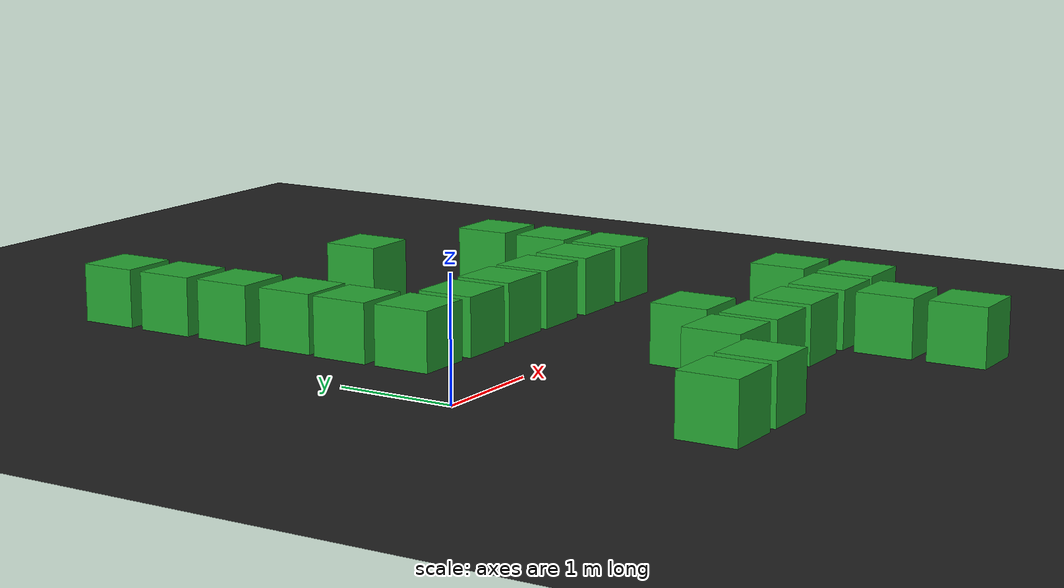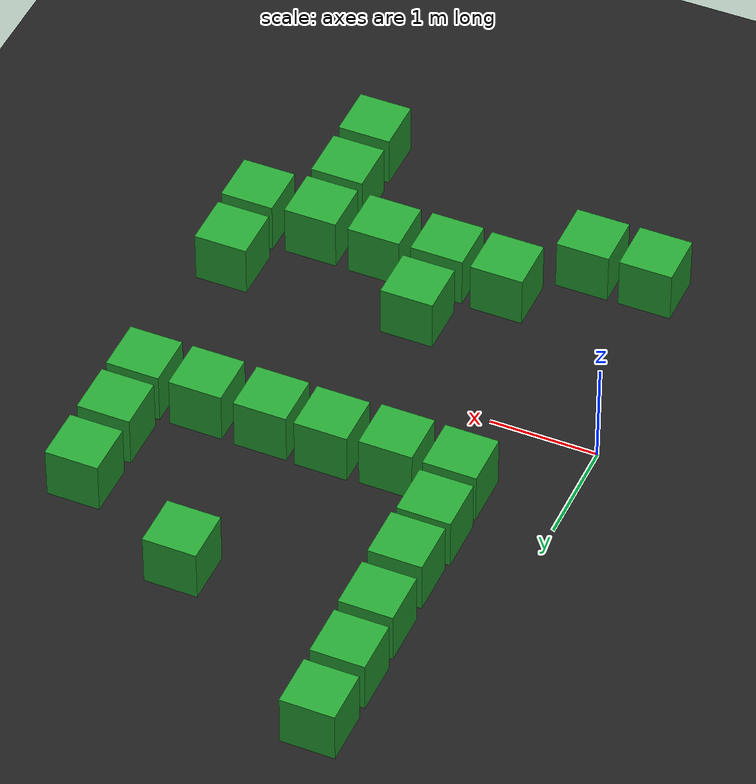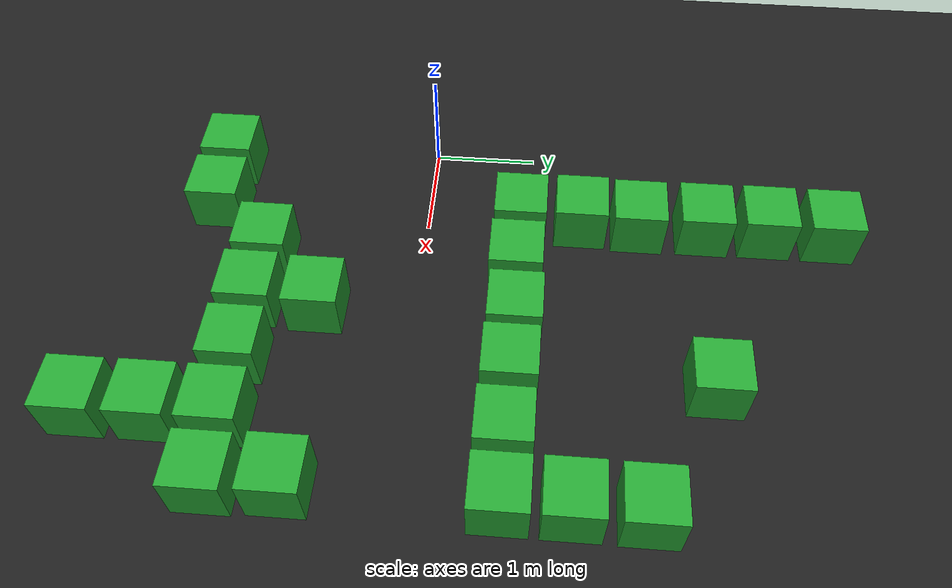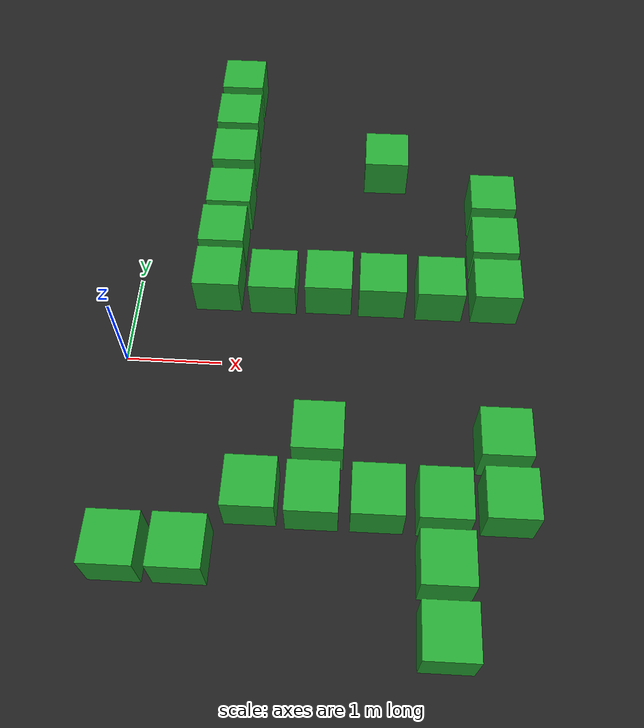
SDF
<sdf version="1.7">
 <world name="default">
  <model name="ground_plane">
   <static>1</static>
   <link name="link">
    <collision name="collision">
     <geometry><plane><normal>0 0 1</normal><size>100 100</size></plane></geometry>
     <surface>
      <friction>
       <ode>
        <mu>1.000000</mu>
        <mu2>1.000000</mu2>
        <fdir1>0.000000 0.000000 0.000000</fdir1>
        <slip1>0.000000</slip1>
        <slip2>0.000000</slip2>
       </ode>
      </friction>
      <bounce>
       <restitution_coefficient>0.000000</restitution_coefficient>
       <threshold>100000.000000</threshold>
      </bounce>
      <contact>
       <ode>
        <soft_cfm>0.000000</soft_cfm>
        <soft_erp>0.200000</soft_erp>
        <kp>1000000000.000000</kp>
        <kd>1.000000</kd>
        <max_vel>100.000000</max_vel>
        <min_depth>0.001000</min_depth>
       </ode>
      </contact>
     </surface>
    </collision>
    <visual name="visual">
     <cast_shadows>0</cast_shadows>
     <geometry><plane><normal>0 0 1</normal><size>100 100</size></plane></geometry>
     <material>
      <script><uri>file://media/materials/scripts/gazebo.material</uri><name>Gazebo/Black</name></script>
     </material>
    </visual>
   </link>
  </model>
  <model name="obstacle00">
   <link name="link_0">
    <inertial>
     <mass>0.1</mass>
     <inertia><ixx>10</ixx><ixy>0</ixy><ixz>0</ixz><iyy>10</iyy><iyz>0</iyz><izz>10</izz></inertia>
    </inertial>
    <visual name="visual">
     <geometry><box><size>0.5 0.5 0.5</size></box></geometry>
     <material>
      <lighting>1</lighting>
      <script><uri>file://media/materials/scripts/gazebo.material</uri><name>Gazebo/Green</name></script>
      <shader type="pixel"><normal_map>__default__</normal_map></shader>
      <ambient>0.3 0.3 0.3 1</ambient>
      <diffuse>0.7 0.7 0.7 1</diffuse>
      <specular>0.01 0.01 0.01 1</specular>
      <emissive>0 0 0 1</emissive>
     </material>
    </visual>
    <collision name="collision">
     <geometry><box><size>0.5 0.5 0.5</size></box></geometry>
     <surface>
      <friction>
       <ode>
        <mu>0.998500</mu>
        <mu2>0.998500</mu2>
        <fdir1>0.000000 0.000000 0.000000</fdir1>
        <slip1>0.000000</slip1>
        <slip2>0.000000</slip2>
       </ode>
      </friction>
      <bounce>
       <restitution_coefficient>0.000000</restitution_coefficient>
       <threshold>100000.000000</threshold>
      </bounce>
      <contact>
       <ode>
        <soft_cfm>0.000000</soft_cfm>
        <soft_erp>0.200000</soft_erp>
        <kp>100000.000000</kp>
        <kd>1.000000</kd>
        <max_vel>100.000000</max_vel>
        <min_depth>0.001000</min_depth>
       </ode>
      </contact>
     </surface>
     <laser_retro>0.000000</laser_retro>
    </collision>
   </link>
   <static>0</static>
   <pose>3.92032 2.10108 0.26 0 -0 0</pose>
  </model>
  <model name="obstacle01">
   <link name="link_0">
    <inertial>
     <mass>0.1</mass>
     <inertia><ixx>10</ixx><ixy>0</ixy><ixz>0</ixz><iyy>10</iyy><iyz>0</iyz><izz>10</izz></inertia>
    </inertial>
    <visual name="visual">
     <geometry><box><size>0.5 0.5 0.5</size></box></geometry>
     <material>
      <lighting>1</lighting>
      <script><uri>file://media/materials/scripts/gazebo.material</uri><name>Gazebo/Green</name></script>
      <shader type="pixel"><normal_map>__default__</normal_map></shader>
      <ambient>0.3 0.3 0.3 1</ambient>
      <diffuse>0.7 0.7 0.7 1</diffuse>
      <specular>0.01 0.01 0.01 1</specular>
      <emissive>0 0 0 1</emissive>
     </material>
    </visual>
    <collision name="collision">
     <geometry><box><size>0.5 0.5 0.5</size></box></geometry>
     <surface>
      <friction>
       <ode>
        <mu>0.998500</mu>
        <mu2>0.998500</mu2>
        <fdir1>0.000000 0.000000 0.000000</fdir1>
        <slip1>0.000000</slip1>
        <slip2>0.000000</slip2>
       </ode>
      </friction>
      <bounce>
       <restitution_coefficient>0.000000</restitution_coefficient>
       <threshold>100000.000000</threshold>
      </bounce>
      <contact>
       <ode>
        <soft_cfm>0.000000</soft_cfm>
        <soft_erp>0.200000</soft_erp>
        <kp>100000.000000</kp>
        <kd>1.000000</kd>
        <max_vel>100.000000</max_vel>
        <min_depth>0.001000</min_depth>
       </ode>
      </contact>
     </surface>
     <laser_retro>0.000000</laser_retro>
    </collision>
   </link>
   <static>0</static>
   <pose>3.91542 1.48158 0.26 0 -0 0</pose>
  </model>
  <model name="obstacle02">
   <link name="link_0">
    <inertial>
     <mass>0.1</mass>
     <inertia><ixx>10</ixx><ixy>0</ixy><ixz>0</ixz><iyy>10</iyy><iyz>0</iyz><izz>10</izz></inertia>
    </inertial>
    <visual name="visual">
     <geometry><box><size>0.5 0.5 0.5</size></box></geometry>
     <material>
      <lighting>1</lighting>
      <script><uri>file://media/materials/scripts/gazebo.material</uri><name>Gazebo/Green</name></script>
      <shader type="pixel"><normal_map>__default__</normal_map></shader>
      <ambient>0.3 0.3 0.3 1</ambient>
      <diffuse>0.7 0.7 0.7 1</diffuse>
      <specular>0.01 0.01 0.01 1</specular>
      <emissive>0 0 0 1</emissive>
     </material>
    </visual>
    <collision name="collision">
     <geometry><box><size>0.5 0.5 0.5</size></box></geometry>
     <surface>
      <friction>
       <ode>
        <mu>0.998500</mu>
        <mu2>0.998500</mu2>
        <fdir1>0.000000 0.000000 0.000000</fdir1>
        <slip1>0.000000</slip1>
        <slip2>0.000000</slip2>
       </ode>
      </friction>
      <bounce>
       <restitution_coefficient>0.000000</restitution_coefficient>
       <threshold>100000.000000</threshold>
      </bounce>
      <contact>
       <ode>
        <soft_cfm>0.000000</soft_cfm>
        <soft_erp>0.200000</soft_erp>
        <kp>100000.000000</kp>
        <kd>1.000000</kd>
        <max_vel>100.000000</max_vel>
        <min_depth>0.001000</min_depth>
       </ode>
      </contact>
     </surface>
     <laser_retro>0.000000</laser_retro>
    </collision>
   </link>
   <static>0</static>
   <pose>3.91543 0.897046 0.26 0 -0 0</pose>
  </model>
  <model name="obstacle03">
   <link name="link_0">
    <inertial>
     <mass>0.1</mass>
     <inertia><ixx>10</ixx><ixy>0</ixy><ixz>0</ixz><iyy>10</iyy><iyz>0</iyz><izz>10</izz></inertia>
    </inertial>
    <visual name="visual">
     <geometry><box><size>0.5 0.5 0.5</size></box></geometry>
     <material>
      <lighting>1</lighting>
      <script><uri>file://media/materials/scripts/gazebo.material</uri><name>Gazebo/Green</name></script>
      <shader type="pixel"><normal_map>__default__</normal_map></shader>
      <ambient>0.3 0.3 0.3 1</ambient>
      <diffuse>0.7 0.7 0.7 1</diffuse>
      <specular>0.01 0.01 0.01 1</specular>
      <emissive>0 0 0 1</emissive>
     </material>
    </visual>
    <collision name="collision">
     <geometry><box><size>0.5 0.5 0.5</size></box></geometry>
     <surface>
      <friction>
       <ode>
        <mu>0.998500</mu>
        <mu2>0.998500</mu2>
        <fdir1>0.000000 0.000000 0.000000</fdir1>
        <slip1>0.000000</slip1>
        <slip2>0.000000</slip2>
       </ode>
      </friction>
      <bounce>
       <restitution_coefficient>0.000000</restitution_coefficient>
       <threshold>100000.000000</threshold>
      </bounce>
      <contact>
       <ode>
        <soft_cfm>0.000000</soft_cfm>
        <soft_erp>0.200000</soft_erp>
        <kp>100000.000000</kp>
        <kd>1.000000</kd>
        <max_vel>100.000000</max_vel>
        <min_depth>0.001000</min_depth>
       </ode>
      </contact>
     </surface>
     <laser_retro>0.000000</laser_retro>
    </collision>
   </link>
   <static>0</static>
   <pose>3.3151 0.898305 0.26 0 -0 0</pose>
  </model>
  <model name="obstacle14">
   <link name="link_0">
    <inertial>
     <mass>0.1</mass>
     <inertia><ixx>10</ixx><ixy>0</ixy><ixz>0</ixz><iyy>10</iyy><iyz>0</iyz><izz>10</izz></inertia>
    </inertial>
    <visual name="visual">
     <geometry><box><size>0.5 0.5 0.5</size></box></geometry>
     <material>
      <lighting>1</lighting>
      <script><uri>file://media/materials/scripts/gazebo.material</uri><name>Gazebo/Green</name></script>
      <shader type="pixel"><normal_map>__default__</normal_map></shader>
      <ambient>0.3 0.3 0.3 1</ambient>
      <diffuse>0.7 0.7 0.7 1</diffuse>
      <specular>0.01 0.01 0.01 1</specular>
      <emissive>0 0 0 1</emissive>
     </material>
    </visual>
    <collision name="collision">
     <geometry><box><size>0.5 0.5 0.5</size></box></geometry>
     <surface>
      <friction>
       <ode>
        <mu>0.998500</mu>
        <mu2>0.998500</mu2>
        <fdir1>0.000000 0.000000 0.000000</fdir1>
        <slip1>0.000000</slip1>
        <slip2>0.000000</slip2>
       </ode>
      </friction>
      <bounce>
       <restitution_coefficient>0.000000</restitution_coefficient>
       <threshold>100000.000000</threshold>
      </bounce>
      <contact>
       <ode>
        <soft_cfm>0.000000</soft_cfm>
        <soft_erp>0.200000</soft_erp>
        <kp>100000.000000</kp>
        <kd>1.000000</kd>
        <max_vel>100.000000</max_vel>
        <min_depth>0.001000</min_depth>
       </ode>
      </contact>
     </surface>
     <laser_retro>0.000000</laser_retro>
    </collision>
   </link>
   <static>0</static>
   <pose>2.69199 0.910463 0.26 0 -0 0</pose>
  </model>
  <model name="obstacle25">
   <link name="link_0">
    <inertial>
     <mass>0.1</mass>
     <inertia><ixx>10</ixx><ixy>0</ixy><ixz>0</ixz><iyy>10</iyy><iyz>0</iyz><izz>10</izz></inertia>
    </inertial>
    <visual name="visual">
     <geometry><box><size>0.5 0.5 0.5</size></box></geometry>
     <material>
      <lighting>1</lighting>
      <script><uri>file://media/materials/scripts/gazebo.material</uri><name>Gazebo/Green</name></script>
      <shader type="pixel"><normal_map>__default__</normal_map></shader>
      <ambient>0.3 0.3 0.3 1</ambient>
      <diffuse>0.7 0.7 0.7 1</diffuse>
      <specular>0.01 0.01 0.01 1</specular>
      <emissive>0 0 0 1</emissive>
     </material>
    </visual>
    <collision name="collision">
     <geometry><box><size>0.5 0.5 0.5</size></box></geometry>
     <surface>
      <friction>
       <ode>
        <mu>0.998500</mu>
        <mu2>0.998500</mu2>
        <fdir1>0.000000 0.000000 0.000000</fdir1>
        <slip1>0.000000</slip1>
        <slip2>0.000000</slip2>
       </ode>
      </friction>
      <bounce>
       <restitution_coefficient>0.000000</restitution_coefficient>
       <threshold>100000.000000</threshold>
      </bounce>
      <contact>
       <ode>
        <soft_cfm>0.000000</soft_cfm>
        <soft_erp>0.200000</soft_erp>
        <kp>100000.000000</kp>
        <kd>1.000000</kd>
        <max_vel>100.000000</max_vel>
        <min_depth>0.001000</min_depth>
       </ode>
      </contact>
     </surface>
     <laser_retro>0.000000</laser_retro>
    </collision>
   </link>
   <static>0</static>
   <pose>2.11146 0.922356 0.26 0 -0 0</pose>
  </model>
  <model name="obstacle36">
   <link name="link_0">
    <inertial>
     <mass>0.1</mass>
     <inertia><ixx>10</ixx><ixy>0</ixy><ixz>0</ixz><iyy>10</iyy><iyz>0</iyz><izz>10</izz></inertia>
    </inertial>
    <visual name="visual">
     <geometry><box><size>0.5 0.5 0.5</size></box></geometry>
     <material>
      <lighting>1</lighting>
      <script><uri>file://media/materials/scripts/gazebo.material</uri><name>Gazebo/Green</name></script>
      <shader type="pixel"><normal_map>__default__</normal_map></shader>
      <ambient>0.3 0.3 0.3 1</ambient>
      <diffuse>0.7 0.7 0.7 1</diffuse>
      <specular>0.01 0.01 0.01 1</specular>
      <emissive>0 0 0 1</emissive>
     </material>
    </visual>
    <collision name="collision">
     <geometry><box><size>0.5 0.5 0.5</size></box></geometry>
     <surface>
      <friction>
       <ode>
        <mu>0.998500</mu>
        <mu2>0.998500</mu2>
        <fdir1>0.000000 0.000000 0.000000</fdir1>
        <slip1>0.000000</slip1>
        <slip2>0.000000</slip2>
       </ode>
      </friction>
      <bounce>
       <restitution_coefficient>0.000000</restitution_coefficient>
       <threshold>100000.000000</threshold>
      </bounce>
      <contact>
       <ode>
        <soft_cfm>0.000000</soft_cfm>
        <soft_erp>0.200000</soft_erp>
        <kp>100000.000000</kp>
        <kd>1.000000</kd>
        <max_vel>100.000000</max_vel>
        <min_depth>0.001000</min_depth>
       </ode>
      </contact>
     </surface>
     <laser_retro>0.000000</laser_retro>
    </collision>
   </link>
   <static>0</static>
   <pose>1.50877 0.902109 0.26 0 -0 0</pose>
  </model>
  <model name="obstacle43">
   <link name="link_0">
    <inertial>
     <mass>0.1</mass>
     <inertia><ixx>10</ixx><ixy>0</ixy><ixz>0</ixz><iyy>10</iyy><iyz>0</iyz><izz>10</izz></inertia>
    </inertial>
    <visual name="visual">
     <geometry><box><size>0.5 0.5 0.5</size></box></geometry>
     <material>
      <lighting>1</lighting>
      <script><uri>file://media/materials/scripts/gazebo.material</uri><name>Gazebo/Green</name></script>
      <shader type="pixel"><normal_map>__default__</normal_map></shader>
      <ambient>0.3 0.3 0.3 1</ambient>
      <diffuse>0.7 0.7 0.7 1</diffuse>
      <specular>0.01 0.01 0.01 1</specular>
      <emissive>0 0 0 1</emissive>
     </material>
    </visual>
    <collision name="collision">
     <geometry><box><size>0.5 0.5 0.5</size></box></geometry>
     <surface>
      <friction>
       <ode>
        <mu>0.998500</mu>
        <mu2>0.998500</mu2>
        <fdir1>0.000000 0.000000 0.000000</fdir1>
        <slip1>0.000000</slip1>
        <slip2>0.000000</slip2>
       </ode>
      </friction>
      <bounce>
       <restitution_coefficient>0.000000</restitution_coefficient>
       <threshold>100000.000000</threshold>
      </bounce>
      <contact>
       <ode>
        <soft_cfm>0.000000</soft_cfm>
        <soft_erp>0.200000</soft_erp>
        <kp>100000.000000</kp>
        <kd>1.000000</kd>
        <max_vel>100.000000</max_vel>
        <min_depth>0.001000</min_depth>
       </ode>
      </contact>
     </surface>
     <laser_retro>0.000000</laser_retro>
    </collision>
   </link>
   <static>0</static>
   <pose>0.90586 0.913955 0.26 0 -0 0</pose>
  </model>
  <model name="obstacle44">
   <link name="link_0">
    <inertial>
     <mass>0.1</mass>
     <inertia><ixx>10</ixx><ixy>0</ixy><ixz>0</ixz><iyy>10</iyy><iyz>0</iyz><izz>10</izz></inertia>
    </inertial>
    <visual name="visual">
     <geometry><box><size>0.5 0.5 0.5</size></box></geometry>
     <material>
      <lighting>1</lighting>
      <script><uri>file://media/materials/scripts/gazebo.material</uri><name>Gazebo/Green</name></script>
      <shader type="pixel"><normal_map>__default__</normal_map></shader>
      <ambient>0.3 0.3 0.3 1</ambient>
      <diffuse>0.7 0.7 0.7 1</diffuse>
      <specular>0.01 0.01 0.01 1</specular>
      <emissive>0 0 0 1</emissive>
     </material>
    </visual>
    <collision name="collision">
     <geometry><box><size>0.5 0.5 0.5</size></box></geometry>
     <surface>
      <friction>
       <ode>
        <mu>0.998500</mu>
        <mu2>0.998500</mu2>
        <fdir1>0.000000 0.000000 0.000000</fdir1>
        <slip1>0.000000</slip1>
        <slip2>0.000000</slip2>
       </ode>
      </friction>
      <bounce>
       <restitution_coefficient>0.000000</restitution_coefficient>
       <threshold>100000.000000</threshold>
      </bounce>
      <contact>
       <ode>
        <soft_cfm>0.000000</soft_cfm>
        <soft_erp>0.200000</soft_erp>
        <kp>100000.000000</kp>
        <kd>1.000000</kd>
        <max_vel>100.000000</max_vel>
        <min_depth>0.001000</min_depth>
       </ode>
      </contact>
     </surface>
     <laser_retro>0.000000</laser_retro>
    </collision>
   </link>
   <static>0</static>
   <pose>2.70939 2.70606 0.26 0 -0 0</pose>
  </model>
  <model name="obstacle45">
   <link name="link_0">
    <inertial>
     <mass>0.1</mass>
     <inertia><ixx>10</ixx><ixy>0</ixy><ixz>0</ixz><iyy>10</iyy><iyz>0</iyz><izz>10</izz></inertia>
    </inertial>
    <visual name="visual">
     <geometry><box><size>0.5 0.5 0.5</size></box></geometry>
     <material>
      <lighting>1</lighting>
      <script><uri>file://media/materials/scripts/gazebo.material</uri><name>Gazebo/Green</name></script>
      <shader type="pixel"><normal_map>__default__</normal_map></shader>
      <ambient>0.3 0.3 0.3 1</ambient>
      <diffuse>0.7 0.7 0.7 1</diffuse>
      <specular>0.01 0.01 0.01 1</specular>
      <emissive>0 0 0 1</emissive>
     </material>
    </visual>
    <collision name="collision">
     <geometry><box><size>0.5 0.5 0.5</size></box></geometry>
     <surface>
      <friction>
       <ode>
        <mu>0.998500</mu>
        <mu2>0.998500</mu2>
        <fdir1>0.000000 0.000000 0.000000</fdir1>
        <slip1>0.000000</slip1>
        <slip2>0.000000</slip2>
       </ode>
      </friction>
      <bounce>
       <restitution_coefficient>0.000000</restitution_coefficient>
       <threshold>100000.000000</threshold>
      </bounce>
      <contact>
       <ode>
        <soft_cfm>0.000000</soft_cfm>
        <soft_erp>0.200000</soft_erp>
        <kp>100000.000000</kp>
        <kd>1.000000</kd>
        <max_vel>100.000000</max_vel>
        <min_depth>0.001000</min_depth>
       </ode>
      </contact>
     </surface>
     <laser_retro>0.000000</laser_retro>
    </collision>
   </link>
   <static>0</static>
   <pose>0.893566 3.91336 0.26 0 -0 0</pose>
  </model>
  <model name="obstacle46">
   <link name="link_0">
    <inertial>
     <mass>0.1</mass>
     <inertia><ixx>10</ixx><ixy>0</ixy><ixz>0</ixz><iyy>10</iyy><iyz>0</iyz><izz>10</izz></inertia>
    </inertial>
    <visual name="visual">
     <geometry><box><size>0.5 0.5 0.5</size></box></geometry>
     <material>
      <lighting>1</lighting>
      <script><uri>file://media/materials/scripts/gazebo.material</uri><name>Gazebo/Green</name></script>
      <shader type="pixel"><normal_map>__default__</normal_map></shader>
      <ambient>0.3 0.3 0.3 1</ambient>
      <diffuse>0.7 0.7 0.7 1</diffuse>
      <specular>0.01 0.01 0.01 1</specular>
      <emissive>0 0 0 1</emissive>
     </material>
    </visual>
    <collision name="collision">
     <geometry><box><size>0.5 0.5 0.5</size></box></geometry>
     <surface>
      <friction>
       <ode>
        <mu>0.998500</mu>
        <mu2>0.998500</mu2>
        <fdir1>0.000000 0.000000 0.000000</fdir1>
        <slip1>0.000000</slip1>
        <slip2>0.000000</slip2>
       </ode>
      </friction>
      <bounce>
       <restitution_coefficient>0.000000</restitution_coefficient>
       <threshold>100000.000000</threshold>
      </bounce>
      <contact>
       <ode>
        <soft_cfm>0.000000</soft_cfm>
        <soft_erp>0.200000</soft_erp>
        <kp>100000.000000</kp>
        <kd>1.000000</kd>
        <max_vel>100.000000</max_vel>
        <min_depth>0.001000</min_depth>
       </ode>
      </contact>
     </surface>
     <laser_retro>0.000000</laser_retro>
    </collision>
   </link>
   <static>0</static>
   <pose>0.893569 3.30008 0.26 0 -0 0</pose>
  </model>
  <model name="obstacle47">
   <link name="link_0">
    <inertial>
     <mass>0.1</mass>
     <inertia><ixx>10</ixx><ixy>0</ixy><ixz>0</ixz><iyy>10</iyy><iyz>0</iyz><izz>10</izz></inertia>
    </inertial>
    <visual name="visual">
     <geometry><box><size>0.5 0.5 0.5</size></box></geometry>
     <material>
      <lighting>1</lighting>
      <script><uri>file://media/materials/scripts/gazebo.material</uri><name>Gazebo/Green</name></script>
      <shader type="pixel"><normal_map>__default__</normal_map></shader>
      <ambient>0.3 0.3 0.3 1</ambient>
      <diffuse>0.7 0.7 0.7 1</diffuse>
      <specular>0.01 0.01 0.01 1</specular>
      <emissive>0 0 0 1</emissive>
     </material>
    </visual>
    <collision name="collision">
     <geometry><box><size>0.5 0.5 0.5</size></box></geometry>
     <surface>
      <friction>
       <ode>
        <mu>0.998500</mu>
        <mu2>0.998500</mu2>
        <fdir1>0.000000 0.000000 0.000000</fdir1>
        <slip1>0.000000</slip1>
        <slip2>0.000000</slip2>
       </ode>
      </friction>
      <bounce>
       <restitution_coefficient>0.000000</restitution_coefficient>
       <threshold>100000.000000</threshold>
      </bounce>
      <contact>
       <ode>
        <soft_cfm>0.000000</soft_cfm>
        <soft_erp>0.200000</soft_erp>
        <kp>100000.000000</kp>
        <kd>1.000000</kd>
        <max_vel>100.000000</max_vel>
        <min_depth>0.001000</min_depth>
       </ode>
      </contact>
     </surface>
     <laser_retro>0.000000</laser_retro>
    </collision>
   </link>
   <static>0</static>
   <pose>0.904175 2.69756 0.26 0 -0 0</pose>
  </model>
  <model name="obstacle04">
   <link name="link_0">
    <inertial>
     <mass>0.1</mass>
     <inertia><ixx>10</ixx><ixy>0</ixy><ixz>0</ixz><iyy>10</iyy><iyz>0</iyz><izz>10</izz></inertia>
    </inertial>
    <visual name="visual">
     <geometry><box><size>0.5 0.5 0.5</size></box></geometry>
     <material>
      <lighting>1</lighting>
      <script><uri>file://media/materials/scripts/gazebo.material</uri><name>Gazebo/Green</name></script>
      <shader type="pixel"><normal_map>__default__</normal_map></shader>
      <ambient>0.3 0.3 0.3 1</ambient>
      <diffuse>0.7 0.7 0.7 1</diffuse>
      <specular>0.01 0.01 0.01 1</specular>
      <emissive>0 0 0 1</emissive>
     </material>
    </visual>
    <collision name="collision">
     <geometry><box><size>0.5 0.5 0.5</size></box></geometry>
     <surface>
      <friction>
       <ode>
        <mu>0.998500</mu>
        <mu2>0.998500</mu2>
        <fdir1>0.000000 0.000000 0.000000</fdir1>
        <slip1>0.000000</slip1>
        <slip2>0.000000</slip2>
       </ode>
      </friction>
      <bounce>
       <restitution_coefficient>0.000000</restitution_coefficient>
       <threshold>100000.000000</threshold>
      </bounce>
      <contact>
       <ode>
        <soft_cfm>0.000000</soft_cfm>
        <soft_erp>0.200000</soft_erp>
        <kp>100000.000000</kp>
        <kd>1.000000</kd>
        <max_vel>100.000000</max_vel>
        <min_depth>0.001000</min_depth>
       </ode>
      </contact>
     </surface>
     <laser_retro>0.000000</laser_retro>
    </collision>
   </link>
   <static>0</static>
   <pose>0.91478 2.06313 0.26 0 -0 0</pose>
  </model>
  <model name="obstacle05">
   <link name="link_0">
    <inertial>
     <mass>0.1</mass>
     <inertia><ixx>10</ixx><ixy>0</ixy><ixz>0</ixz><iyy>10</iyy><iyz>0</iyz><izz>10</izz></inertia>
    </inertial>
    <visual name="visual">
     <geometry><box><size>0.5 0.5 0.5</size></box></geometry>
     <material>
      <lighting>1</lighting>
      <script><uri>file://media/materials/scripts/gazebo.material</uri><name>Gazebo/Green</name></script>
      <shader type="pixel"><normal_map>__default__</normal_map></shader>
      <ambient>0.3 0.3 0.3 1</ambient>
      <diffuse>0.7 0.7 0.7 1</diffuse>
      <specular>0.01 0.01 0.01 1</specular>
      <emissive>0 0 0 1</emissive>
     </material>
    </visual>
    <collision name="collision">
     <geometry><box><size>0.5 0.5 0.5</size></box></geometry>
     <surface>
      <friction>
       <ode>
        <mu>0.998500</mu>
        <mu2>0.998500</mu2>
        <fdir1>0.000000 0.000000 0.000000</fdir1>
        <slip1>0.000000</slip1>
        <slip2>0.000000</slip2>
       </ode>
      </friction>
      <bounce>
       <restitution_coefficient>0.000000</restitution_coefficient>
       <threshold>100000.000000</threshold>
      </bounce>
      <contact>
       <ode>
        <soft_cfm>0.000000</soft_cfm>
        <soft_erp>0.200000</soft_erp>
        <kp>100000.000000</kp>
        <kd>1.000000</kd>
        <max_vel>100.000000</max_vel>
        <min_depth>0.001000</min_depth>
       </ode>
      </contact>
     </surface>
     <laser_retro>0.000000</laser_retro>
    </collision>
   </link>
   <static>0</static>
   <pose>0.893579 1.50256 0.26 0 -0 0</pose>
  </model>
  <model name="obstacle06">
   <link name="link_0">
    <inertial>
     <mass>0.1</mass>
     <inertia><ixx>10</ixx><ixy>0</ixy><ixz>0</ixz><iyy>10</iyy><iyz>0</iyz><izz>10</izz></inertia>
    </inertial>
    <visual name="visual">
     <geometry><box><size>0.5 0.5 0.5</size></box></geometry>
     <material>
      <lighting>1</lighting>
      <script><uri>file://media/materials/scripts/gazebo.material</uri><name>Gazebo/Green</name></script>
      <shader type="pixel"><normal_map>__default__</normal_map></shader>
      <ambient>0.3 0.3 0.3 1</ambient>
      <diffuse>0.7 0.7 0.7 1</diffuse>
      <specular>0.01 0.01 0.01 1</specular>
      <emissive>0 0 0 1</emissive>
     </material>
    </visual>
    <collision name="collision">
     <geometry><box><size>0.5 0.5 0.5</size></box></geometry>
     <surface>
      <friction>
       <ode>
        <mu>0.998500</mu>
        <mu2>0.998500</mu2>
        <fdir1>0.000000 0.000000 0.000000</fdir1>
        <slip1>0.000000</slip1>
        <slip2>0.000000</slip2>
       </ode>
      </friction>
      <bounce>
       <restitution_coefficient>0.000000</restitution_coefficient>
       <threshold>100000.000000</threshold>
      </bounce>
      <contact>
       <ode>
        <soft_cfm>0.000000</soft_cfm>
        <soft_erp>0.200000</soft_erp>
        <kp>100000.000000</kp>
        <kd>1.000000</kd>
        <max_vel>100.000000</max_vel>
        <min_depth>0.001000</min_depth>
       </ode>
      </contact>
     </surface>
     <laser_retro>0.000000</laser_retro>
    </collision>
   </link>
   <static>0</static>
   <pose>3.89608 -0.884451 0.26 0 -0 0</pose>
  </model>
  <model name="obstacle07">
   <link name="link_0">
    <inertial>
     <mass>0.1</mass>
     <inertia><ixx>10</ixx><ixy>0</ixy><ixz>0</ixz><iyy>10</iyy><iyz>0</iyz><izz>10</izz></inertia>
    </inertial>
    <visual name="visual">
     <geometry><box><size>0.5 0.5 0.5</size></box></geometry>
     <material>
      <lighting>1</lighting>
      <script><uri>file://media/materials/scripts/gazebo.material</uri><name>Gazebo/Green</name></script>
      <shader type="pixel"><normal_map>__default__</normal_map></shader>
      <ambient>0.3 0.3 0.3 1</ambient>
      <diffuse>0.7 0.7 0.7 1</diffuse>
      <specular>0.01 0.01 0.01 1</specular>
      <emissive>0 0 0 1</emissive>
     </material>
    </visual>
    <collision name="collision">
     <geometry><box><size>0.5 0.5 0.5</size></box></geometry>
     <surface>
      <friction>
       <ode>
        <mu>0.998500</mu>
        <mu2>0.998500</mu2>
        <fdir1>0.000000 0.000000 0.000000</fdir1>
        <slip1>0.000000</slip1>
        <slip2>0.000000</slip2>
       </ode>
      </friction>
      <bounce>
       <restitution_coefficient>0.000000</restitution_coefficient>
       <threshold>100000.000000</threshold>
      </bounce>
      <contact>
       <ode>
        <soft_cfm>0.000000</soft_cfm>
        <soft_erp>0.200000</soft_erp>
        <kp>100000.000000</kp>
        <kd>1.000000</kd>
        <max_vel>100.000000</max_vel>
        <min_depth>0.001000</min_depth>
       </ode>
      </contact>
     </surface>
     <laser_retro>0.000000</laser_retro>
    </collision>
   </link>
   <static>0</static>
   <pose>3.91632 -1.49502 0.26 0 -0 0</pose>
  </model>
  <model name="obstacle08">
   <link name="link_0">
    <inertial>
     <mass>0.1</mass>
     <inertia><ixx>10</ixx><ixy>0</ixy><ixz>0</ixz><iyy>10</iyy><iyz>0</iyz><izz>10</izz></inertia>
    </inertial>
    <visual name="visual">
     <geometry><box><size>0.5 0.5 0.5</size></box></geometry>
     <material>
      <lighting>1</lighting>
      <script><uri>file://media/materials/scripts/gazebo.material</uri><name>Gazebo/Green</name></script>
      <shader type="pixel"><normal_map>__default__</normal_map></shader>
      <ambient>0.3 0.3 0.3 1</ambient>
      <diffuse>0.7 0.7 0.7 1</diffuse>
      <specular>0.01 0.01 0.01 1</specular>
      <emissive>0 0 0 1</emissive>
     </material>
    </visual>
    <collision name="collision">
     <geometry><box><size>0.5 0.5 0.5</size></box></geometry>
     <surface>
      <friction>
       <ode>
        <mu>0.998500</mu>
        <mu2>0.998500</mu2>
        <fdir1>0.000000 0.000000 0.000000</fdir1>
        <slip1>0.000000</slip1>
        <slip2>0.000000</slip2>
       </ode>
      </friction>
      <bounce>
       <restitution_coefficient>0.000000</restitution_coefficient>
       <threshold>100000.000000</threshold>
      </bounce>
      <contact>
       <ode>
        <soft_cfm>0.000000</soft_cfm>
        <soft_erp>0.200000</soft_erp>
        <kp>100000.000000</kp>
        <kd>1.000000</kd>
        <max_vel>100.000000</max_vel>
        <min_depth>0.001000</min_depth>
       </ode>
      </contact>
     </surface>
     <laser_retro>0.000000</laser_retro>
    </collision>
   </link>
   <static>0</static>
   <pose>3.30564 -1.52303 0.26 0 -0 0</pose>
  </model>
  <model name="obstacle09">
   <link name="link_0">
    <inertial>
     <mass>0.1</mass>
     <inertia><ixx>10</ixx><ixy>0</ixy><ixz>0</ixz><iyy>10</iyy><iyz>0</iyz><izz>10</izz></inertia>
    </inertial>
    <visual name="visual">
     <geometry><box><size>0.5 0.5 0.5</size></box></geometry>
     <material>
      <lighting>1</lighting>
      <script><uri>file://media/materials/scripts/gazebo.material</uri><name>Gazebo/Green</name></script>
      <shader type="pixel"><normal_map>__default__</normal_map></shader>
      <ambient>0.3 0.3 0.3 1</ambient>
      <diffuse>0.7 0.7 0.7 1</diffuse>
      <specular>0.01 0.01 0.01 1</specular>
      <emissive>0 0 0 1</emissive>
     </material>
    </visual>
    <collision name="collision">
     <geometry><box><size>0.5 0.5 0.5</size></box></geometry>
     <surface>
      <friction>
       <ode>
        <mu>0.998500</mu>
        <mu2>0.998500</mu2>
        <fdir1>0.000000 0.000000 0.000000</fdir1>
        <slip1>0.000000</slip1>
        <slip2>0.000000</slip2>
       </ode>
      </friction>
      <bounce>
       <restitution_coefficient>0.000000</restitution_coefficient>
       <threshold>100000.000000</threshold>
      </bounce>
      <contact>
       <ode>
        <soft_cfm>0.000000</soft_cfm>
        <soft_erp>0.200000</soft_erp>
        <kp>100000.000000</kp>
        <kd>1.000000</kd>
        <max_vel>100.000000</max_vel>
        <min_depth>0.001000</min_depth>
       </ode>
      </contact>
     </surface>
     <laser_retro>0.000000</laser_retro>
    </collision>
   </link>
   <static>0</static>
   <pose>3.30776 -2.11794 0.26 0 -0 0</pose>
  </model>
  <model name="obstacle10">
   <link name="link_0">
    <inertial>
     <mass>0.1</mass>
     <inertia><ixx>10</ixx><ixy>0</ixy><ixz>0</ixz><iyy>10</iyy><iyz>0</iyz><izz>10</izz></inertia>
    </inertial>
    <visual name="visual">
     <geometry><box><size>0.5 0.5 0.5</size></box></geometry>
     <material>
      <lighting>1</lighting>
      <script><uri>file://media/materials/scripts/gazebo.material</uri><name>Gazebo/Green</name></script>
      <shader type="pixel"><normal_map>__default__</normal_map></shader>
      <ambient>0.3 0.3 0.3 1</ambient>
      <diffuse>0.7 0.7 0.7 1</diffuse>
      <specular>0.01 0.01 0.01 1</specular>
      <emissive>0 0 0 1</emissive>
     </material>
    </visual>
    <collision name="collision">
     <geometry><box><size>0.5 0.5 0.5</size></box></geometry>
     <surface>
      <friction>
       <ode>
        <mu>0.998500</mu>
        <mu2>0.998500</mu2>
        <fdir1>0.000000 0.000000 0.000000</fdir1>
        <slip1>0.000000</slip1>
        <slip2>0.000000</slip2>
       </ode>
      </friction>
      <bounce>
       <restitution_coefficient>0.000000</restitution_coefficient>
       <threshold>100000.000000</threshold>
      </bounce>
      <contact>
       <ode>
        <soft_cfm>0.000000</soft_cfm>
        <soft_erp>0.200000</soft_erp>
        <kp>100000.000000</kp>
        <kd>1.000000</kd>
        <max_vel>100.000000</max_vel>
        <min_depth>0.001000</min_depth>
       </ode>
      </contact>
     </surface>
     <laser_retro>0.000000</laser_retro>
    </collision>
   </link>
   <static>0</static>
   <pose>3.3121 -2.73775 0.26 0 -0 0</pose>
  </model>
  <model name="obstacle11">
   <link name="link_0">
    <inertial>
     <mass>0.1</mass>
     <inertia><ixx>10</ixx><ixy>0</ixy><ixz>0</ixz><iyy>10</iyy><iyz>0</iyz><izz>10</izz></inertia>
    </inertial>
    <visual name="visual">
     <geometry><box><size>0.5 0.5 0.5</size></box></geometry>
     <material>
      <lighting>1</lighting>
      <script><uri>file://media/materials/scripts/gazebo.material</uri><name>Gazebo/Green</name></script>
      <shader type="pixel"><normal_map>__default__</normal_map></shader>
      <ambient>0.3 0.3 0.3 1</ambient>
      <diffuse>0.7 0.7 0.7 1</diffuse>
      <specular>0.01 0.01 0.01 1</specular>
      <emissive>0 0 0 1</emissive>
     </material>
    </visual>
    <collision name="collision">
     <geometry><box><size>0.5 0.5 0.5</size></box></geometry>
     <surface>
      <friction>
       <ode>
        <mu>0.998500</mu>
        <mu2>0.998500</mu2>
        <fdir1>0.000000 0.000000 0.000000</fdir1>
        <slip1>0.000000</slip1>
        <slip2>0.000000</slip2>
       </ode>
      </friction>
      <bounce>
       <restitution_coefficient>0.000000</restitution_coefficient>
       <threshold>100000.000000</threshold>
      </bounce>
      <contact>
       <ode>
        <soft_cfm>0.000000</soft_cfm>
        <soft_erp>0.200000</soft_erp>
        <kp>100000.000000</kp>
        <kd>1.000000</kd>
        <max_vel>100.000000</max_vel>
        <min_depth>0.001000</min_depth>
       </ode>
      </contact>
     </surface>
     <laser_retro>0.000000</laser_retro>
    </collision>
   </link>
   <static>0</static>
   <pose>2.68317 -1.51911 0.26 0 -0 0</pose>
  </model>
  <model name="obstacle12">
   <link name="link_0">
    <inertial>
     <mass>0.1</mass>
     <inertia><ixx>10</ixx><ixy>0</ixy><ixz>0</ixz><iyy>10</iyy><iyz>0</iyz><izz>10</izz></inertia>
    </inertial>
    <visual name="visual">
     <geometry><box><size>0.5 0.5 0.5</size></box></geometry>
     <material>
      <lighting>1</lighting>
      <script><uri>file://media/materials/scripts/gazebo.material</uri><name>Gazebo/Green</name></script>
      <shader type="pixel"><normal_map>__default__</normal_map></shader>
      <ambient>0.3 0.3 0.3 1</ambient>
      <diffuse>0.7 0.7 0.7 1</diffuse>
      <specular>0.01 0.01 0.01 1</specular>
      <emissive>0 0 0 1</emissive>
     </material>
    </visual>
    <collision name="collision">
     <geometry><box><size>0.5 0.5 0.5</size></box></geometry>
     <surface>
      <friction>
       <ode>
        <mu>0.998500</mu>
        <mu2>0.998500</mu2>
        <fdir1>0.000000 0.000000 0.000000</fdir1>
        <slip1>0.000000</slip1>
        <slip2>0.000000</slip2>
       </ode>
      </friction>
      <bounce>
       <restitution_coefficient>0.000000</restitution_coefficient>
       <threshold>100000.000000</threshold>
      </bounce>
      <contact>
       <ode>
        <soft_cfm>0.000000</soft_cfm>
        <soft_erp>0.200000</soft_erp>
        <kp>100000.000000</kp>
        <kd>1.000000</kd>
        <max_vel>100.000000</max_vel>
        <min_depth>0.001000</min_depth>
       </ode>
      </contact>
     </surface>
     <laser_retro>0.000000</laser_retro>
    </collision>
   </link>
   <static>0</static>
   <pose>2.07189 -1.52285 0.26 0 -0 0</pose>
  </model>
  <model name="obstacle13">
   <link name="link_0">
    <inertial>
     <mass>0.1</mass>
     <inertia><ixx>10</ixx><ixy>0</ixy><ixz>0</ixz><iyy>10</iyy><iyz>0</iyz><izz>10</izz></inertia>
    </inertial>
    <visual name="visual">
     <geometry><box><size>0.5 0.5 0.5</size></box></geometry>
     <material>
      <lighting>1</lighting>
      <script><uri>file://media/materials/scripts/gazebo.material</uri><name>Gazebo/Green</name></script>
      <shader type="pixel"><normal_map>__default__</normal_map></shader>
      <ambient>0.3 0.3 0.3 1</ambient>
      <diffuse>0.7 0.7 0.7 1</diffuse>
      <specular>0.01 0.01 0.01 1</specular>
      <emissive>0 0 0 1</emissive>
     </material>
    </visual>
    <collision name="collision">
     <geometry><box><size>0.5 0.5 0.5</size></box></geometry>
     <surface>
      <friction>
       <ode>
        <mu>0.998500</mu>
        <mu2>0.998500</mu2>
        <fdir1>0.000000 0.000000 0.000000</fdir1>
        <slip1>0.000000</slip1>
        <slip2>0.000000</slip2>
       </ode>
      </friction>
      <bounce>
       <restitution_coefficient>0.000000</restitution_coefficient>
       <threshold>100000.000000</threshold>
      </bounce>
      <contact>
       <ode>
        <soft_cfm>0.000000</soft_cfm>
        <soft_erp>0.200000</soft_erp>
        <kp>100000.000000</kp>
        <kd>1.000000</kd>
        <max_vel>100.000000</max_vel>
        <min_depth>0.001000</min_depth>
       </ode>
      </contact>
     </surface>
     <laser_retro>0.000000</laser_retro>
    </collision>
   </link>
   <static>0</static>
   <pose>1.48581 -1.50282 0.26 0 -0 0</pose>
  </model>
  <model name="obstacle15">
   <link name="link_0">
    <inertial>
     <mass>0.1</mass>
     <inertia><ixx>10</ixx><ixy>0</ixy><ixz>0</ixz><iyy>10</iyy><iyz>0</iyz><izz>10</izz></inertia>
    </inertial>
    <visual name="visual">
     <geometry><box><size>0.5 0.5 0.5</size></box></geometry>
     <material>
      <lighting>1</lighting>
      <script><uri>file://media/materials/scripts/gazebo.material</uri><name>Gazebo/Green</name></script>
      <shader type="pixel"><normal_map>__default__</normal_map></shader>
      <ambient>0.3 0.3 0.3 1</ambient>
      <diffuse>0.7 0.7 0.7 1</diffuse>
      <specular>0.01 0.01 0.01 1</specular>
      <emissive>0 0 0 1</emissive>
     </material>
    </visual>
    <collision name="collision">
     <geometry><box><size>0.5 0.5 0.5</size></box></geometry>
     <surface>
      <friction>
       <ode>
        <mu>0.998500</mu>
        <mu2>0.998500</mu2>
        <fdir1>0.000000 0.000000 0.000000</fdir1>
        <slip1>0.000000</slip1>
        <slip2>0.000000</slip2>
       </ode>
      </friction>
      <bounce>
       <restitution_coefficient>0.000000</restitution_coefficient>
       <threshold>100000.000000</threshold>
      </bounce>
      <contact>
       <ode>
        <soft_cfm>0.000000</soft_cfm>
        <soft_erp>0.200000</soft_erp>
        <kp>100000.000000</kp>
        <kd>1.000000</kd>
        <max_vel>100.000000</max_vel>
        <min_depth>0.001000</min_depth>
       </ode>
      </contact>
     </surface>
     <laser_retro>0.000000</laser_retro>
    </collision>
   </link>
   <static>0</static>
   <pose>2.09475 -0.904872 0.26 0 -0 0</pose>
  </model>
  <model name="obstacle16">
   <link name="link_0">
    <inertial>
     <mass>0.1</mass>
     <inertia><ixx>10</ixx><ixy>0</ixy><ixz>0</ixz><iyy>10</iyy><iyz>0</iyz><izz>10</izz></inertia>
    </inertial>
    <visual name="visual">
     <geometry><box><size>0.5 0.5 0.5</size></box></geometry>
     <material>
      <lighting>1</lighting>
      <script><uri>file://media/materials/scripts/gazebo.material</uri><name>Gazebo/Green</name></script>
      <shader type="pixel"><normal_map>__default__</normal_map></shader>
      <ambient>0.3 0.3 0.3 1</ambient>
      <diffuse>0.7 0.7 0.7 1</diffuse>
      <specular>0.01 0.01 0.01 1</specular>
      <emissive>0 0 0 1</emissive>
     </material>
    </visual>
    <collision name="collision">
     <geometry><box><size>0.5 0.5 0.5</size></box></geometry>
     <surface>
      <friction>
       <ode>
        <mu>0.998500</mu>
        <mu2>0.998500</mu2>
        <fdir1>0.000000 0.000000 0.000000</fdir1>
        <slip1>0.000000</slip1>
        <slip2>0.000000</slip2>
       </ode>
      </friction>
      <bounce>
       <restitution_coefficient>0.000000</restitution_coefficient>
       <threshold>100000.000000</threshold>
      </bounce>
      <contact>
       <ode>
        <soft_cfm>0.000000</soft_cfm>
        <soft_erp>0.200000</soft_erp>
        <kp>100000.000000</kp>
        <kd>1.000000</kd>
        <max_vel>100.000000</max_vel>
        <min_depth>0.001000</min_depth>
       </ode>
      </contact>
     </surface>
     <laser_retro>0.000000</laser_retro>
    </collision>
   </link>
   <static>0</static>
   <pose>0.899255 -2.08804 0.26 0 -0 0</pose>
  </model>
  <model name="obstacle17">
   <link name="link_0">
    <inertial>
     <mass>0.1</mass>
     <inertia><ixx>10</ixx><ixy>0</ixy><ixz>0</ixz><iyy>10</iyy><iyz>0</iyz><izz>10</izz></inertia>
    </inertial>
    <visual name="visual">
     <geometry><box><size>0.5 0.5 0.5</size></box></geometry>
     <material>
      <lighting>1</lighting>
      <script><uri>file://media/materials/scripts/gazebo.material</uri><name>Gazebo/Green</name></script>
      <shader type="pixel"><normal_map>__default__</normal_map></shader>
      <ambient>0.3 0.3 0.3 1</ambient>
      <diffuse>0.7 0.7 0.7 1</diffuse>
      <specular>0.01 0.01 0.01 1</specular>
      <emissive>0 0 0 1</emissive>
     </material>
    </visual>
    <collision name="collision">
     <geometry><box><size>0.5 0.5 0.5</size></box></geometry>
     <surface>
      <friction>
       <ode>
        <mu>0.998500</mu>
        <mu2>0.998500</mu2>
        <fdir1>0.000000 0.000000 0.000000</fdir1>
        <slip1>0.000000</slip1>
        <slip2>0.000000</slip2>
       </ode>
      </friction>
      <bounce>
       <restitution_coefficient>0.000000</restitution_coefficient>
       <threshold>100000.000000</threshold>
      </bounce>
      <contact>
       <ode>
        <soft_cfm>0.000000</soft_cfm>
        <soft_erp>0.200000</soft_erp>
        <kp>100000.000000</kp>
        <kd>1.000000</kd>
        <max_vel>100.000000</max_vel>
        <min_depth>0.001000</min_depth>
       </ode>
      </contact>
     </surface>
     <laser_retro>0.000000</laser_retro>
    </collision>
   </link>
   <static>0</static>
   <pose>0.297209 -2.09079 0.26 0 -0 0</pose>
  </model>
 </world>
</sdf>
